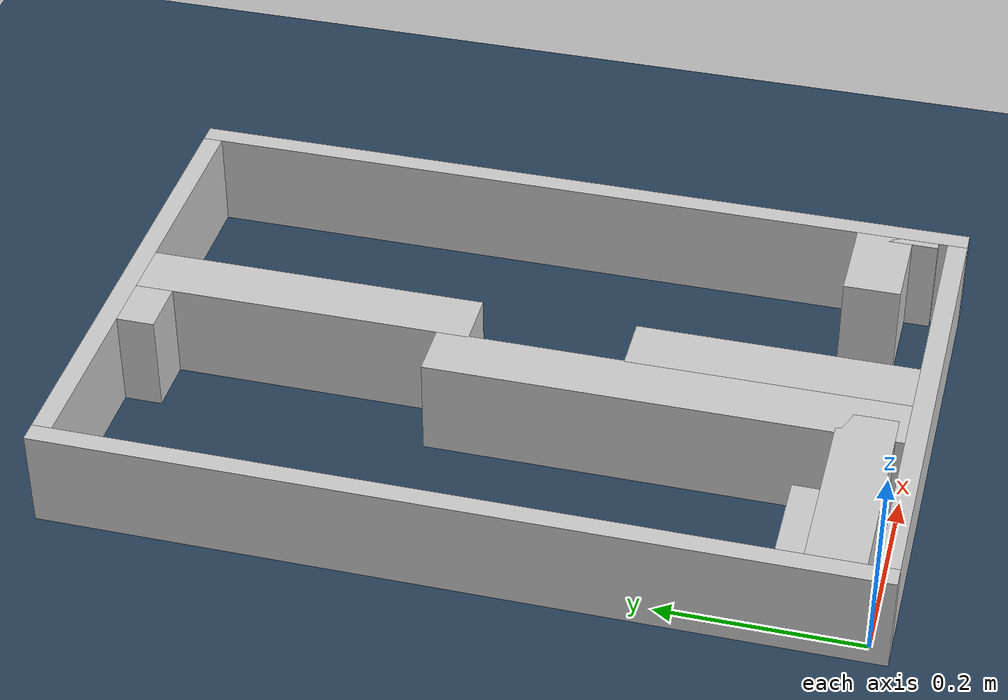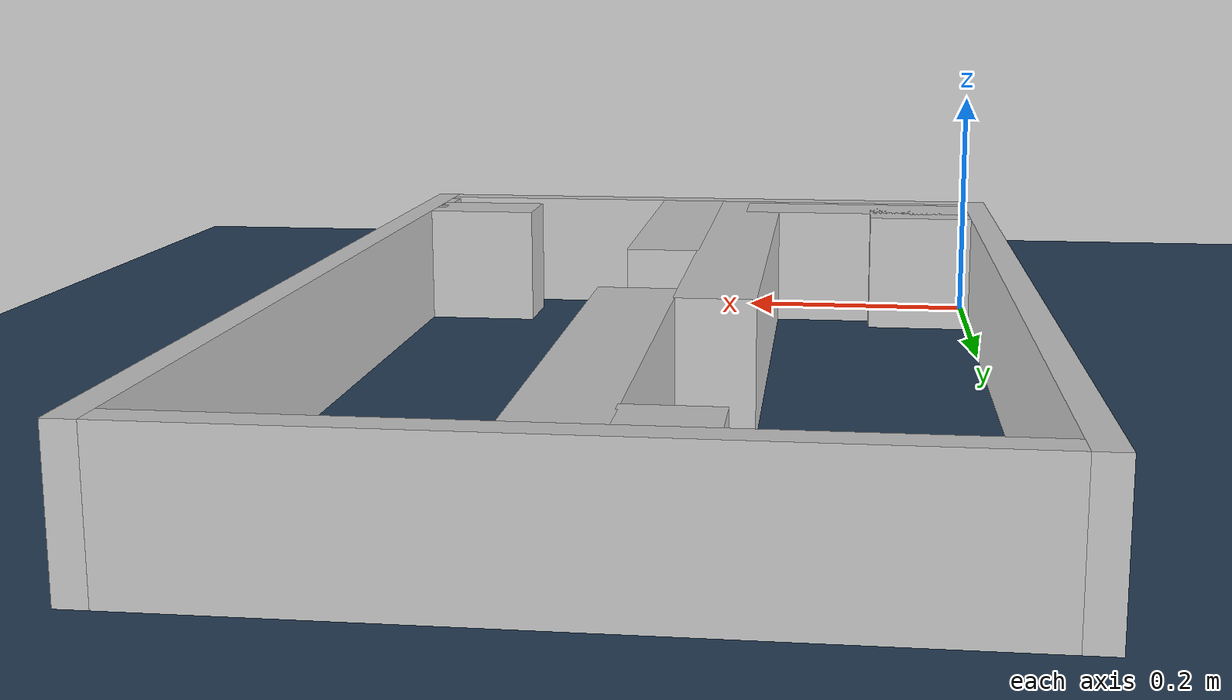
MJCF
<?xml version="1.0" ?>
<mujoco model="generated_real_template">
  <compiler angle="degree"/>
  <option timestep="0.002" integrator="implicitfast" iterations="100" cone="elliptic"/>
  <default>
    <geom density="1"/>
  </default>
  <asset>
    <texture builtin="gradient" height="3072" rgb1="0.3 0.5 0.7" rgb2="0 0 0" type="skybox" width="512"/>
    <texture builtin="checker" height="300" mark="edge" markrgb="0.8 0.8 0.8" name="groundplane" rgb1="0.2 0.3 0.4" rgb2="0.1 0.2 0.3" type="2d" width="300"/>
    <material name="groundplane" reflectance="0.2" texrepeat="5 5" texture="groundplane" texuniform="true"/>
  </asset>
  <worldbody>
    <light dir="0 0 -1" directional="true" pos="0 0 1.5"/>
    <geom name="floor" type="plane" condim="4" friction="0.5 0.005 0.001" material="groundplane" size="0 0 0.05"/>
    <body name="walls">
      <geom name="wall_boundary_left" type="box" condim="4" friction="1.0 0.005 0.0001" rgba="0.8 0.8 0.8 1" pos="-0.010000 0.387500 0.050000" euler="0 0 0.000000" size="0.010000 0.407500 0.050000"/>
      <geom name="wall_boundary_right" type="box" condim="4" friction="1.0 0.005 0.0001" rgba="0.8 0.8 0.8 1" pos="0.500000 0.387500 0.050000" euler="0 0 0.000000" size="0.010000 0.407500 0.050000"/>
      <geom name="wall_boundary_bottom" type="box" condim="4" friction="1.0 0.005 0.0001" rgba="0.8 0.8 0.8 1" pos="0.245000 -0.010000 0.050000" euler="0 0 0.000000" size="0.245000 0.010000 0.050000"/>
      <geom name="wall_boundary_top" type="box" condim="4" friction="1.0 0.005 0.0001" rgba="0.8 0.8 0.8 1" pos="0.245000 0.785000 0.050000" euler="0 0 0.000000" size="0.245000 0.010000 0.050000"/>
      <geom name="wall_inner_1_1" type="box" condim="4" friction="1.0 0.005 0.0001" rgba="0.8 0.8 0.8 1" pos="0.044326 0.063589 0.050000" euler="0 0 0.000000" size="0.044326 0.028500 0.050000"/>
      <geom name="wall_inner_1_2" type="box" condim="4" friction="1.0 0.005 0.0001" rgba="0.8 0.8 0.8 1" pos="0.443329 0.063589 0.050000" euler="0 0 0.000000" size="0.046671 0.028500 0.050000"/>
      <geom name="wall_inner_2_1" type="box" condim="4" friction="1.0 0.005 0.0001" rgba="0.8 0.8 0.8 1" pos="0.199669 0.232653 0.050000" euler="0 0 90.000000" size="0.232653 0.028500 0.050000"/>
      <geom name="wall_inner_2_2" type="box" condim="4" friction="1.0 0.005 0.0001" rgba="0.8 0.8 0.8 1" pos="0.199669 0.755890 0.050000" euler="0 0 90.000000" size="0.019110 0.028500 0.050000"/>
      <geom name="wall_inner_3_1" type="box" condim="4" friction="1.0 0.005 0.0001" rgba="0.8 0.8 0.8 1" pos="0.255367 0.139125 0.050000" euler="0 0 90.000000" size="0.139125 0.028500 0.050000"/>
      <geom name="wall_inner_3_2" type="box" condim="4" friction="1.0 0.005 0.0001" rgba="0.8 0.8 0.8 1" pos="0.255367 0.603988 0.050000" euler="0 0 90.000000" size="0.171012 0.028500 0.050000"/>
      <geom name="wall_inner_4_1" type="box" condim="4" friction="1.0 0.005 0.0001" rgba="0.8 0.8 0.8 1" pos="0.100701 0.037470 0.050000" euler="0 0 0.000000" size="0.100701 0.028500 0.050000"/>
      <geom name="wall_inner_4_2" type="box" condim="4" friction="1.0 0.005 0.0001" rgba="0.8 0.8 0.8 1" pos="0.486181 0.037470 0.050000" euler="0 0 0.000000" size="0.003819 0.028500 0.050000"/>
    </body>
  </worldbody>
</mujoco>
